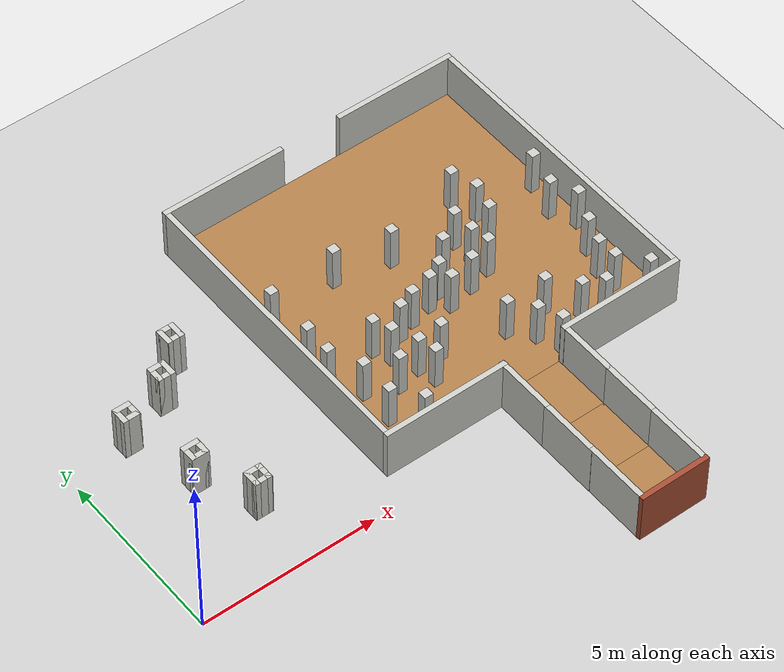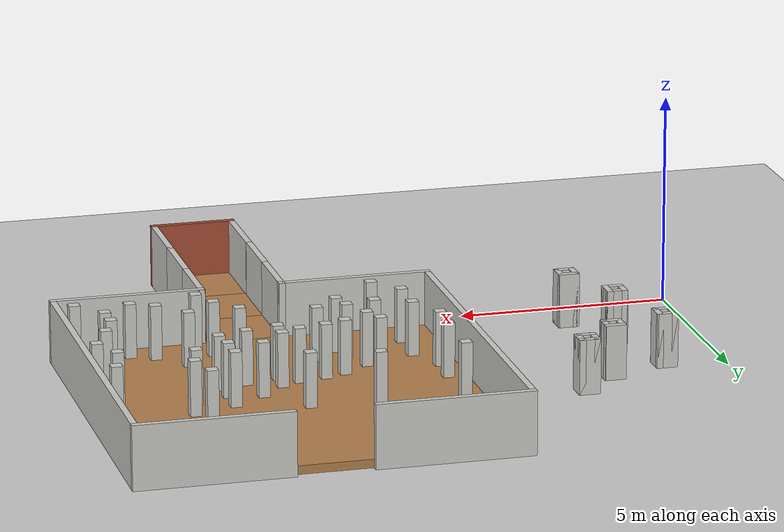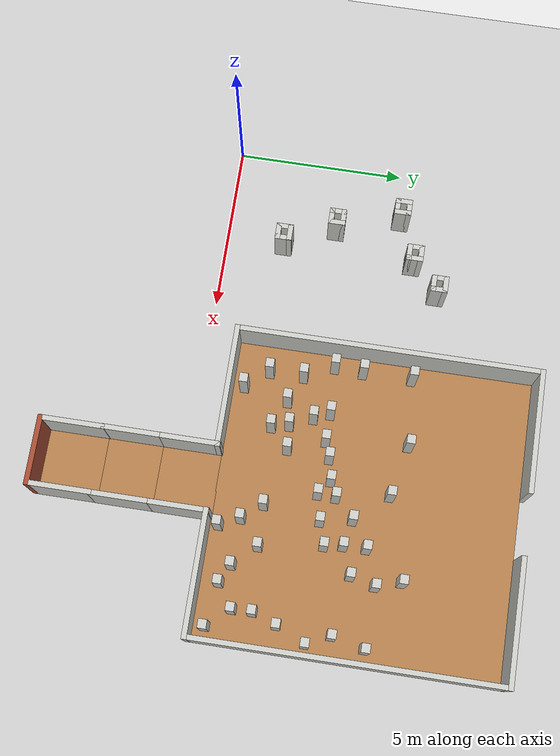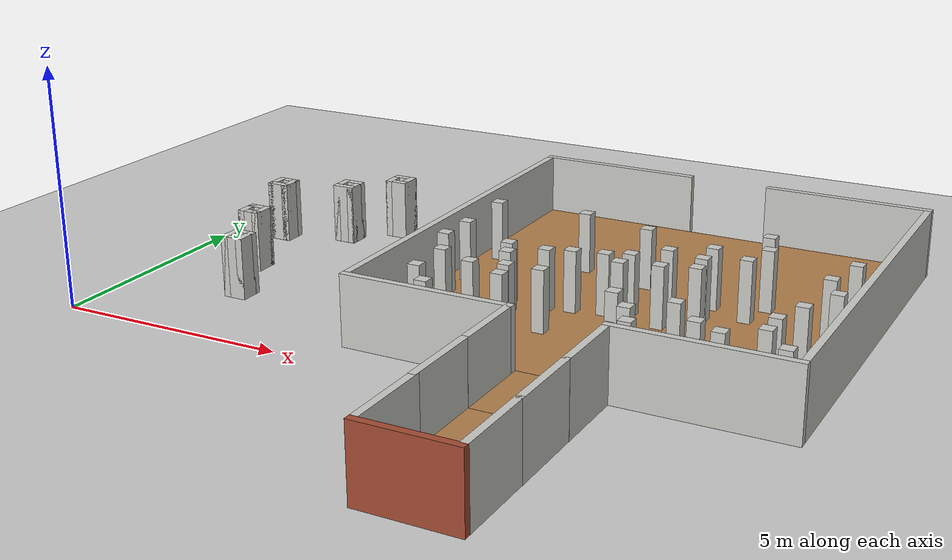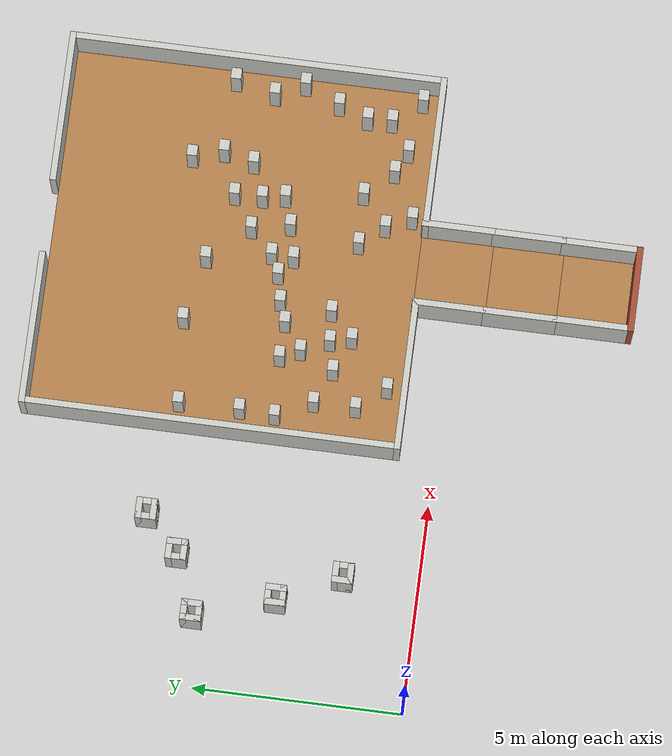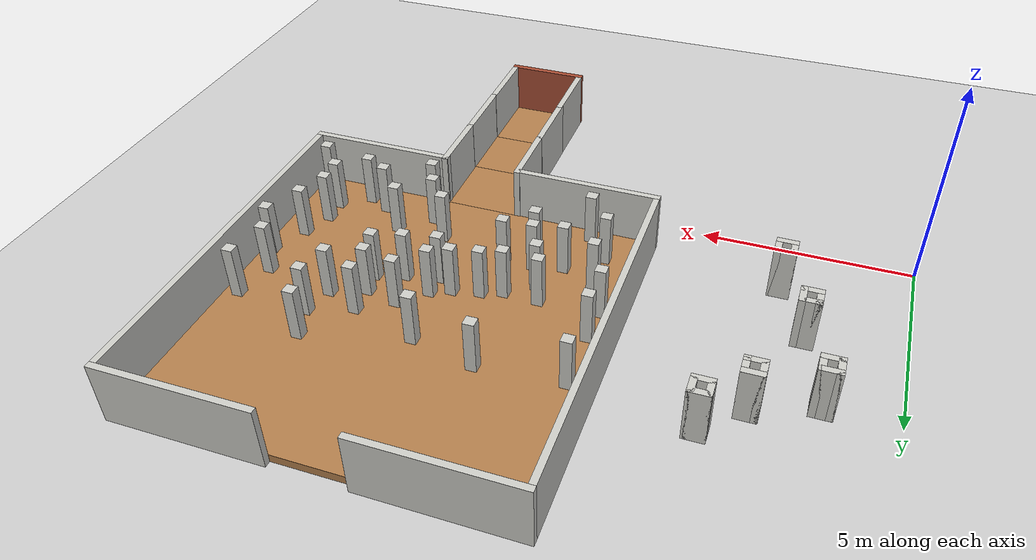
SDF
<sdf version="1.6">
 <world name="default">
  <model name="ground_plane">
   <static>1</static>
   <link name="link">
    <collision name="collision">
     <geometry><plane><normal>0 0 1</normal><size>100 100</size></plane></geometry>
     <surface><friction><ode><mu>100</mu><mu2>50</mu2></ode></friction></surface>
    </collision>
    <visual name="visual">
     <cast_shadows>0</cast_shadows>
     <geometry><plane><normal>0 0 1</normal><size>100 100</size></plane></geometry>
     <material>
      <script><uri>file://media/materials/scripts/gazebo.material</uri><name>Gazebo/Grey</name></script>
     </material>
    </visual>
   </link>
  </model>
  <model name="nerve_room_5x5ARENA_straight_clone">
   <pose>10.535 5.35033 0 0 -0 0</pose>
   <link name="Wall_11">
    <collision name="Wall_11_Collision">
     <geometry><box><size>8.75 0.15 1.5</size></box></geometry>
     <pose>0 0 0.75 0 -0 0</pose>
    </collision>
    <visual name="Wall_11_Visual">
     <pose>0 0 0.75 0 -0 0</pose>
     <geometry><box><size>8.75 0.15 1.5</size></box></geometry>
     <material>
      <script><uri>file://media/materials/scripts/gazebo.material</uri><name>Gazebo/CeilingTiled</name></script>
      <ambient>1 0.764706 0.305882 1</ambient>
     </material>
    </visual>
    <pose>4.4489 -0.000387 0 0 0 -1.5708</pose>
   </link>
   <link name="Wall_13">
    <collision name="Wall_13_Collision">
     <geometry><box><size>8.75 0.15 1.5</size></box></geometry>
     <pose>0 0 0.75 0 -0 0</pose>
    </collision>
    <visual name="Wall_13_Visual">
     <pose>0 0 0.75 0 -0 0</pose>
     <geometry><box><size>8.75 0.15 1.5</size></box></geometry>
     <material>
      <script><uri>file://media/materials/scripts/gazebo.material</uri><name>Gazebo/CeilingTiled</name></script>
      <ambient>1 0.764706 0.305882 1</ambient>
     </material>
    </visual>
    <pose>-4.44913 0.000846 0 0 0 -1.5708</pose>
   </link>
   <link name="Wall_15">
    <collision name="Wall_15_Collision">
     <geometry><box><size>3.65 0.15 1.5</size></box></geometry>
     <pose>0 0 0.75 0 -0 0</pose>
    </collision>
    <visual name="Wall_15_Visual">
     <pose>0 0 0.75 0 -0 0</pose>
     <geometry><box><size>3.65 0.15 1.5</size></box></geometry>
     <material>
      <script><uri>file://media/materials/scripts/gazebo.material</uri><name>Gazebo/CeilingTiled</name></script>
      <ambient>1 0.764706 0.305882 1</ambient>
     </material>
    </visual>
    <pose>2.69939 -4.45071 0 0 -0 0</pose>
   </link>
   <link name="Wall_17">
    <collision name="Wall_17_Collision">
     <geometry><box><size>3.65 0.15 1.5</size></box></geometry>
     <pose>0 0 0.75 0 -0 0</pose>
    </collision>
    <visual name="Wall_17_Visual">
     <pose>0 0 0.75 0 -0 0</pose>
     <geometry><box><size>3.65 0.15 1.5</size></box></geometry>
     <material>
      <script><uri>file://media/materials/scripts/gazebo.material</uri><name>Gazebo/CeilingTiled</name></script>
      <ambient>1 0.764706 0.305882 1</ambient>
     </material>
    </visual>
    <pose>-2.69939 4.45071 0 0 -0 0</pose>
   </link>
   <link name="Wall_19">
    <collision name="Wall_19_Collision">
     <geometry><box><size>3.65 0.15 1.5</size></box></geometry>
     <pose>0 0 0.75 0 -0 0</pose>
    </collision>
    <visual name="Wall_19_Visual">
     <pose>0 0 0.75 0 -0 0</pose>
     <geometry><box><size>3.65 0.15 1.5</size></box></geometry>
     <material>
      <script><uri>file://media/materials/scripts/gazebo.material</uri><name>Gazebo/CeilingTiled</name></script>
      <ambient>1 0.764706 0.305882 1</ambient>
     </material>
    </visual>
    <pose>2.69903 4.44972 0 0 -0 0</pose>
   </link>
   <link name="Wall_21">
    <collision name="Wall_21_Collision">
     <geometry><box><size>3.65 0.15 1.5</size></box></geometry>
     <pose>0 0 0.75 0 -0 0</pose>
    </collision>
    <visual name="Wall_21_Visual">
     <pose>0 0 0.75 0 -0 0</pose>
     <geometry><box><size>3.65 0.15 1.5</size></box></geometry>
     <material>
      <script><uri>file://media/materials/scripts/gazebo.material</uri><name>Gazebo/CeilingTiled</name></script>
      <ambient>1 0.764706 0.305882 1</ambient>
     </material>
    </visual>
    <pose>-2.69904 -4.44976 0 0 -0 0</pose>
   </link>
   <link name="Wall_6">
    <collision name="Wall_6_Collision">
     <geometry><box><size>8.76 8.75 0.2</size></box></geometry>
     <pose>0 0 0.1 0 -0 0</pose>
    </collision>
    <visual name="Wall_6_Visual">
     <pose>0 0 0.1 0 -0 0</pose>
     <geometry><box><size>8.76 8.75 0.2</size></box></geometry>
     <material>
      <script><uri>file://media/materials/scripts/gazebo.material</uri><name>Gazebo/Wood</name></script>
      <ambient>1 0.764706 0.305882 1</ambient>
     </material>
    </visual>
    <pose>0.000265 -0.004129 0 0 -0 1.5708</pose>
   </link>
   <static>1</static>
  </model>
  <model name="nerve_end_clone">
   <pose>10.5356 -3.31521 0 0 -0 3.14159</pose>
   <link name="Wall_0">
    <collision name="Wall_0_Collision">
     <geometry><box><size>1.76 1.75 0.2</size></box></geometry>
     <pose>0 0 0.1 0 -0 0</pose>
    </collision>
    <visual name="Wall_0_Visual">
     <pose>0 0 0.1 0 -0 0</pose>
     <geometry><box><size>1.76 1.75 0.2</size></box></geometry>
     <material>
      <script><uri>file://media/materials/scripts/gazebo.material</uri><name>Gazebo/Wood</name></script>
      <ambient>1 0.764706 0.305882 1</ambient>
     </material>
    </visual>
    <pose>-0.009 -0.064 0 0 -0 0</pose>
   </link>
   <link name="Wall_2">
    <collision name="Wall_2_Collision">
     <geometry><box><size>1.8 0.15 1.5</size></box></geometry>
     <pose>0 0 0.75 0 -0 0</pose>
    </collision>
    <visual name="Wall_2_Visual">
     <pose>0 0 0.75 0 -0 0</pose>
     <geometry><box><size>1.8 0.15 1.5</size></box></geometry>
     <material>
      <script><uri>file://media/materials/scripts/gazebo.material</uri><name>Gazebo/CeilingTiled</name></script>
      <ambient>1 0.764706 0.305882 1</ambient>
     </material>
    </visual>
    <pose>-0.95 -0.065 0 0 0 -1.5708</pose>
   </link>
   <link name="Wall_4">
    <collision name="Wall_4_Collision">
     <geometry><box><size>1.8 0.15 1.5</size></box></geometry>
     <pose>0 0 0.75 0 -0 0</pose>
    </collision>
    <visual name="Wall_4_Visual">
     <pose>0 0 0.75 0 -0 0</pose>
     <geometry><box><size>1.8 0.15 1.5</size></box></geometry>
     <material>
      <script><uri>file://media/materials/scripts/gazebo.material</uri><name>Gazebo/CeilingTiled</name></script>
      <ambient>1 0.764706 0.305882 1</ambient>
     </material>
    </visual>
    <pose>0.95 -0.065 0 0 0 -1.5708</pose>
   </link>
   <link name="Wall_6">
    <collision name="Wall_6_Collision">
     <geometry><box><size>2.05 0.15 1.5</size></box></geometry>
     <pose>0 0 0.75 0 -0 0</pose>
    </collision>
    <visual name="Wall_6_Visual">
     <pose>0 0 0.75 0 -0 0</pose>
     <geometry><box><size>2.05 0.15 1.5</size></box></geometry>
     <material>
      <script><uri>file://media/materials/scripts/gazebo.material</uri><name>Gazebo/Bricks</name></script>
      <ambient>0.996078 0.47451 0.0196078 1</ambient>
     </material>
    </visual>
    <pose>0 0.89 0 0 -0 0</pose>
   </link>
   <static>1</static>
  </model>
  <model name="nerve_obs_squarepillar_large_clone_2">
   <pose>3.01182 5.71985 0.2 0 -0 0</pose>
   <link name="Wall_31">
    <collision name="Wall_31_Collision">
     <geometry><box><size>0.5 0.15 1.3</size></box></geometry>
     <pose>0 0 0.65 0 -0 0</pose>
    </collision>
    <visual name="Wall_31_Visual">
     <pose>0 0 0.65 0 -0 0</pose>
     <geometry><box><size>0.5 0.15 1.3</size></box></geometry>
     <material>
      <script><uri>file://media/materials/scripts/gazebo.material</uri><name>Gazebo/CeilingTiled</name></script>
      <ambient>1 0.764706 0.305882 1</ambient>
     </material>
    </visual>
    <pose>-0.175 0 0 0 0 -1.5708</pose>
   </link>
   <link name="Wall_32">
    <collision name="Wall_32_Collision">
     <geometry><box><size>0.5 0.15 1.3</size></box></geometry>
     <pose>0 0 0.65 0 -0 0</pose>
    </collision>
    <visual name="Wall_32_Visual">
     <pose>0 0 0.65 0 -0 0</pose>
     <geometry><box><size>0.5 0.15 1.3</size></box></geometry>
     <material>
      <script><uri>file://media/materials/scripts/gazebo.material</uri><name>Gazebo/CeilingTiled</name></script>
      <ambient>1 0.764706 0.305882 1</ambient>
     </material>
    </visual>
    <pose>0 -0.175 0 0 -0 0</pose>
   </link>
   <link name="Wall_33">
    <collision name="Wall_33_Collision">
     <geometry><box><size>0.5 0.15 1.3</size></box></geometry>
     <pose>0 0 0.65 0 -0 0</pose>
    </collision>
    <visual name="Wall_33_Visual">
     <pose>0 0 0.65 0 -0 0</pose>
     <geometry><box><size>0.5 0.15 1.3</size></box></geometry>
     <material>
      <script><uri>file://media/materials/scripts/gazebo.material</uri><name>Gazebo/CeilingTiled</name></script>
      <ambient>1 0.764706 0.305882 1</ambient>
     </material>
    </visual>
    <pose>0.175 0 0 0 -0 1.5708</pose>
   </link>
   <link name="Wall_34">
    <collision name="Wall_34_Collision">
     <geometry><box><size>0.5 0.15 1.3</size></box></geometry>
     <pose>0 0 0.65 0 -0 0</pose>
    </collision>
    <visual name="Wall_34_Visual">
     <pose>0 0 0.65 0 -0 0</pose>
     <geometry><box><size>0.5 0.15 1.3</size></box></geometry>
     <material>
      <script><uri>file://media/materials/scripts/gazebo.material</uri><name>Gazebo/CeilingTiled</name></script>
      <ambient>1 0.764706 0.305882 1</ambient>
     </material>
    </visual>
    <pose>0 0.175 0 0 -0 3.14159</pose>
   </link>
   <static>1</static>
  </model>
  <model name="nerve_obs_squarepillar_large_clone_4">
   <pose>2.22626 3.28532 0.2 0 -0 0</pose>
   <link name="Wall_31">
    <collision name="Wall_31_Collision">
     <geometry><box><size>0.5 0.15 1.3</size></box></geometry>
     <pose>0 0 0.65 0 -0 0</pose>
    </collision>
    <visual name="Wall_31_Visual">
     <pose>0 0 0.65 0 -0 0</pose>
     <geometry><box><size>0.5 0.15 1.3</size></box></geometry>
     <material>
      <script><uri>file://media/materials/scripts/gazebo.material</uri><name>Gazebo/CeilingTiled</name></script>
      <ambient>1 0.764706 0.305882 1</ambient>
     </material>
    </visual>
    <pose>-0.175 0 0 0 0 -1.5708</pose>
   </link>
   <link name="Wall_32">
    <collision name="Wall_32_Collision">
     <geometry><box><size>0.5 0.15 1.3</size></box></geometry>
     <pose>0 0 0.65 0 -0 0</pose>
    </collision>
    <visual name="Wall_32_Visual">
     <pose>0 0 0.65 0 -0 0</pose>
     <geometry><box><size>0.5 0.15 1.3</size></box></geometry>
     <material>
      <script><uri>file://media/materials/scripts/gazebo.material</uri><name>Gazebo/CeilingTiled</name></script>
      <ambient>1 0.764706 0.305882 1</ambient>
     </material>
    </visual>
    <pose>0 -0.175 0 0 -0 0</pose>
   </link>
   <link name="Wall_33">
    <collision name="Wall_33_Collision">
     <geometry><box><size>0.5 0.15 1.3</size></box></geometry>
     <pose>0 0 0.65 0 -0 0</pose>
    </collision>
    <visual name="Wall_33_Visual">
     <pose>0 0 0.65 0 -0 0</pose>
     <geometry><box><size>0.5 0.15 1.3</size></box></geometry>
     <material>
      <script><uri>file://media/materials/scripts/gazebo.material</uri><name>Gazebo/CeilingTiled</name></script>
      <ambient>1 0.764706 0.305882 1</ambient>
     </material>
    </visual>
    <pose>0.175 0 0 0 -0 1.5708</pose>
   </link>
   <link name="Wall_34">
    <collision name="Wall_34_Collision">
     <geometry><box><size>0.5 0.15 1.3</size></box></geometry>
     <pose>0 0 0.65 0 -0 0</pose>
    </collision>
    <visual name="Wall_34_Visual">
     <pose>0 0 0.65 0 -0 0</pose>
     <geometry><box><size>0.5 0.15 1.3</size></box></geometry>
     <material>
      <script><uri>file://media/materials/scripts/gazebo.material</uri><name>Gazebo/CeilingTiled</name></script>
      <ambient>1 0.764706 0.305882 1</ambient>
     </material>
    </visual>
    <pose>0 0.175 0 0 -0 3.14159</pose>
   </link>
   <static>1</static>
  </model>
  <model name="nerve_obs_squarepillar_large_clone_6">
   <pose>2.94415 1.78308 0.2 0 -0 0</pose>
   <link name="Wall_31">
    <collision name="Wall_31_Collision">
     <geometry><box><size>0.5 0.15 1.3</size></box></geometry>
     <pose>0 0 0.65 0 -0 0</pose>
    </collision>
    <visual name="Wall_31_Visual">
     <pose>0 0 0.65 0 -0 0</pose>
     <geometry><box><size>0.5 0.15 1.3</size></box></geometry>
     <material>
      <script><uri>file://media/materials/scripts/gazebo.material</uri><name>Gazebo/CeilingTiled</name></script>
      <ambient>1 0.764706 0.305882 1</ambient>
     </material>
    </visual>
    <pose>-0.175 0 0 0 0 -1.5708</pose>
   </link>
   <link name="Wall_32">
    <collision name="Wall_32_Collision">
     <geometry><box><size>0.5 0.15 1.3</size></box></geometry>
     <pose>0 0 0.65 0 -0 0</pose>
    </collision>
    <visual name="Wall_32_Visual">
     <pose>0 0 0.65 0 -0 0</pose>
     <geometry><box><size>0.5 0.15 1.3</size></box></geometry>
     <material>
      <script><uri>file://media/materials/scripts/gazebo.material</uri><name>Gazebo/CeilingTiled</name></script>
      <ambient>1 0.764706 0.305882 1</ambient>
     </material>
    </visual>
    <pose>0 -0.175 0 0 -0 0</pose>
   </link>
   <link name="Wall_33">
    <collision name="Wall_33_Collision">
     <geometry><box><size>0.5 0.15 1.3</size></box></geometry>
     <pose>0 0 0.65 0 -0 0</pose>
    </collision>
    <visual name="Wall_33_Visual">
     <pose>0 0 0.65 0 -0 0</pose>
     <geometry><box><size>0.5 0.15 1.3</size></box></geometry>
     <material>
      <script><uri>file://media/materials/scripts/gazebo.material</uri><name>Gazebo/CeilingTiled</name></script>
      <ambient>1 0.764706 0.305882 1</ambient>
     </material>
    </visual>
    <pose>0.175 0 0 0 -0 1.5708</pose>
   </link>
   <link name="Wall_34">
    <collision name="Wall_34_Collision">
     <geometry><box><size>0.5 0.15 1.3</size></box></geometry>
     <pose>0 0 0.65 0 -0 0</pose>
    </collision>
    <visual name="Wall_34_Visual">
     <pose>0 0 0.65 0 -0 0</pose>
     <geometry><box><size>0.5 0.15 1.3</size></box></geometry>
     <material>
      <script><uri>file://media/materials/scripts/gazebo.material</uri><name>Gazebo/CeilingTiled</name></script>
      <ambient>1 0.764706 0.305882 1</ambient>
     </material>
    </visual>
    <pose>0 0.175 0 0 -0 3.14159</pose>
   </link>
   <static>1</static>
  </model>
  <model name="nerve_obs_squarepillar_large_clone_7">
   <pose>1.61679 5.18935 0.2 0 -0 0</pose>
   <link name="Wall_31">
    <collision name="Wall_31_Collision">
     <geometry><box><size>0.5 0.15 1.3</size></box></geometry>
     <pose>0 0 0.65 0 -0 0</pose>
    </collision>
    <visual name="Wall_31_Visual">
     <pose>0 0 0.65 0 -0 0</pose>
     <geometry><box><size>0.5 0.15 1.3</size></box></geometry>
     <material>
      <script><uri>file://media/materials/scripts/gazebo.material</uri><name>Gazebo/CeilingTiled</name></script>
      <ambient>1 0.764706 0.305882 1</ambient>
     </material>
    </visual>
    <pose>-0.175 0 0 0 0 -1.5708</pose>
   </link>
   <link name="Wall_32">
    <collision name="Wall_32_Collision">
     <geometry><box><size>0.5 0.15 1.3</size></box></geometry>
     <pose>0 0 0.65 0 -0 0</pose>
    </collision>
    <visual name="Wall_32_Visual">
     <pose>0 0 0.65 0 -0 0</pose>
     <geometry><box><size>0.5 0.15 1.3</size></box></geometry>
     <material>
      <script><uri>file://media/materials/scripts/gazebo.material</uri><name>Gazebo/CeilingTiled</name></script>
      <ambient>1 0.764706 0.305882 1</ambient>
     </material>
    </visual>
    <pose>0 -0.175 0 0 -0 0</pose>
   </link>
   <link name="Wall_33">
    <collision name="Wall_33_Collision">
     <geometry><box><size>0.5 0.15 1.3</size></box></geometry>
     <pose>0 0 0.65 0 -0 0</pose>
    </collision>
    <visual name="Wall_33_Visual">
     <pose>0 0 0.65 0 -0 0</pose>
     <geometry><box><size>0.5 0.15 1.3</size></box></geometry>
     <material>
      <script><uri>file://media/materials/scripts/gazebo.material</uri><name>Gazebo/CeilingTiled</name></script>
      <ambient>1 0.764706 0.305882 1</ambient>
     </material>
    </visual>
    <pose>0.175 0 0 0 -0 1.5708</pose>
   </link>
   <link name="Wall_34">
    <collision name="Wall_34_Collision">
     <geometry><box><size>0.5 0.15 1.3</size></box></geometry>
     <pose>0 0 0.65 0 -0 0</pose>
    </collision>
    <visual name="Wall_34_Visual">
     <pose>0 0 0.65 0 -0 0</pose>
     <geometry><box><size>0.5 0.15 1.3</size></box></geometry>
     <material>
      <script><uri>file://media/materials/scripts/gazebo.material</uri><name>Gazebo/CeilingTiled</name></script>
      <ambient>1 0.764706 0.305882 1</ambient>
     </material>
    </visual>
    <pose>0 0.175 0 0 -0 3.14159</pose>
   </link>
   <static>1</static>
  </model>
  <model name="nerve_obs_squarepillar_large_clone_10">
   <pose>3.87219 6.54737 0.2 0 -0 0</pose>
   <link name="Wall_31">
    <collision name="Wall_31_Collision">
     <geometry><box><size>0.5 0.15 1.3</size></box></geometry>
     <pose>0 0 0.65 0 -0 0</pose>
    </collision>
    <visual name="Wall_31_Visual">
     <pose>0 0 0.65 0 -0 0</pose>
     <geometry><box><size>0.5 0.15 1.3</size></box></geometry>
     <material>
      <script><uri>file://media/materials/scripts/gazebo.material</uri><name>Gazebo/CeilingTiled</name></script>
      <ambient>1 0.764706 0.305882 1</ambient>
     </material>
    </visual>
    <pose>-0.175 0 0 0 0 -1.5708</pose>
   </link>
   <link name="Wall_32">
    <collision name="Wall_32_Collision">
     <geometry><box><size>0.5 0.15 1.3</size></box></geometry>
     <pose>0 0 0.65 0 -0 0</pose>
    </collision>
    <visual name="Wall_32_Visual">
     <pose>0 0 0.65 0 -0 0</pose>
     <geometry><box><size>0.5 0.15 1.3</size></box></geometry>
     <material>
      <script><uri>file://media/materials/scripts/gazebo.material</uri><name>Gazebo/CeilingTiled</name></script>
      <ambient>1 0.764706 0.305882 1</ambient>
     </material>
    </visual>
    <pose>0 -0.175 0 0 -0 0</pose>
   </link>
   <link name="Wall_33">
    <collision name="Wall_33_Collision">
     <geometry><box><size>0.5 0.15 1.3</size></box></geometry>
     <pose>0 0 0.65 0 -0 0</pose>
    </collision>
    <visual name="Wall_33_Visual">
     <pose>0 0 0.65 0 -0 0</pose>
     <geometry><box><size>0.5 0.15 1.3</size></box></geometry>
     <material>
      <script><uri>file://media/materials/scripts/gazebo.material</uri><name>Gazebo/CeilingTiled</name></script>
      <ambient>1 0.764706 0.305882 1</ambient>
     </material>
    </visual>
    <pose>0.175 0 0 0 -0 1.5708</pose>
   </link>
   <link name="Wall_34">
    <collision name="Wall_34_Collision">
     <geometry><box><size>0.5 0.15 1.3</size></box></geometry>
     <pose>0 0 0.65 0 -0 0</pose>
    </collision>
    <visual name="Wall_34_Visual">
     <pose>0 0 0.65 0 -0 0</pose>
     <geometry><box><size>0.5 0.15 1.3</size></box></geometry>
     <material>
      <script><uri>file://media/materials/scripts/gazebo.material</uri><name>Gazebo/CeilingTiled</name></script>
      <ambient>1 0.764706 0.305882 1</ambient>
     </material>
    </visual>
    <pose>0 0.175 0 0 -0 3.14159</pose>
   </link>
   <static>1</static>
  </model>
  <model name="nerve_straight_clone_clone_1_clone">
   <pose>10.5362 0.116636 0 0 -0 0</pose>
   <link name="Wall_0">
    <collision name="Wall_0_Collision">
     <geometry><box><size>1.76 1.75 0.2</size></box></geometry>
     <pose>0 0 0.1 0 -0 0</pose>
    </collision>
    <visual name="Wall_0_Visual">
     <pose>0 0 0.1 0 -0 0</pose>
     <geometry><box><size>1.76 1.75 0.2</size></box></geometry>
     <material>
      <script><uri>file://media/materials/scripts/gazebo.material</uri><name>Gazebo/Wood</name></script>
      <ambient>1 0.764706 0.305882 1</ambient>
     </material>
    </visual>
    <pose>0.005 -0.002 0 0 -0 3.14159</pose>
   </link>
   <link name="Wall_2">
    <collision name="Wall_2_Collision">
     <geometry><box><size>1.75 0.15 1.5</size></box></geometry>
     <pose>0 0 0.75 0 -0 0</pose>
    </collision>
    <visual name="Wall_2_Visual">
     <pose>0 0 0.75 0 -0 0</pose>
     <geometry><box><size>1.75 0.15 1.5</size></box></geometry>
     <material>
      <script><uri>file://media/materials/scripts/gazebo.material</uri><name>Gazebo/CeilingTiled</name></script>
      <ambient>1 0.764706 0.305882 1</ambient>
     </material>
    </visual>
    <pose>-0.955 0.002 0 0 0 -1.5708</pose>
   </link>
   <link name="Wall_4">
    <collision name="Wall_4_Collision">
     <geometry><box><size>1.75 0.15 1.5</size></box></geometry>
     <pose>0 0 0.75 0 -0 0</pose>
    </collision>
    <visual name="Wall_4_Visual">
     <pose>0 0 0.75 0 -0 0</pose>
     <geometry><box><size>1.75 0.15 1.5</size></box></geometry>
     <material>
      <script><uri>file://media/materials/scripts/gazebo.material</uri><name>Gazebo/CeilingTiled</name></script>
      <ambient>1 0.764706 0.305882 1</ambient>
     </material>
    </visual>
    <pose>0.955 0.002 0 0 0 -1.5708</pose>
   </link>
   <static>1</static>
  </model>
  <model name="nerve_straight_clone_clone_1_clone_0">
   <pose>10.5344 -1.57658 0 0 -0 0</pose>
   <link name="Wall_0">
    <collision name="Wall_0_Collision">
     <geometry><box><size>1.76 1.75 0.2</size></box></geometry>
     <pose>0 0 0.1 0 -0 0</pose>
    </collision>
    <visual name="Wall_0_Visual">
     <pose>0 0 0.1 0 -0 0</pose>
     <geometry><box><size>1.76 1.75 0.2</size></box></geometry>
     <material>
      <script><uri>file://media/materials/scripts/gazebo.material</uri><name>Gazebo/Wood</name></script>
      <ambient>1 0.764706 0.305882 1</ambient>
     </material>
    </visual>
    <pose>0.005 -0.002 0 0 -0 3.14159</pose>
   </link>
   <link name="Wall_2">
    <collision name="Wall_2_Collision">
     <geometry><box><size>1.75 0.15 1.5</size></box></geometry>
     <pose>0 0 0.75 0 -0 0</pose>
    </collision>
    <visual name="Wall_2_Visual">
     <pose>0 0 0.75 0 -0 0</pose>
     <geometry><box><size>1.75 0.15 1.5</size></box></geometry>
     <material>
      <script><uri>file://media/materials/scripts/gazebo.material</uri><name>Gazebo/CeilingTiled</name></script>
      <ambient>1 0.764706 0.305882 1</ambient>
     </material>
    </visual>
    <pose>-0.955 0.002 0 0 0 -1.5708</pose>
   </link>
   <link name="Wall_4">
    <collision name="Wall_4_Collision">
     <geometry><box><size>1.75 0.15 1.5</size></box></geometry>
     <pose>0 0 0.75 0 -0 0</pose>
    </collision>
    <visual name="Wall_4_Visual">
     <pose>0 0 0.75 0 -0 0</pose>
     <geometry><box><size>1.75 0.15 1.5</size></box></geometry>
     <material>
      <script><uri>file://media/materials/scripts/gazebo.material</uri><name>Gazebo/CeilingTiled</name></script>
      <ambient>1 0.764706 0.305882 1</ambient>
     </material>
    </visual>
    <pose>0.955 0.002 0 0 0 -1.5708</pose>
   </link>
   <static>1</static>
  </model>
  <model name="nerve_obs_squarepillar_small_clone_2">
   <pose>8.61579 6.31183 0.2 0 -0 0</pose>
   <link name="Wall_40">
    <collision name="Wall_40_Collision">
     <geometry><box><size>0.26 0.25 1.3</size></box></geometry>
     <pose>0 0 0.65 0 -0 0</pose>
    </collision>
    <visual name="Wall_40_Visual">
     <pose>0 0 0.65 0 -0 0</pose>
     <geometry><box><size>0.26 0.25 1.3</size></box></geometry>
     <material>
      <script><uri>file://media/materials/scripts/gazebo.material</uri><name>Gazebo/CeilingTiled</name></script>
      <ambient>1 0.764706 0.305882 1</ambient>
     </material>
    </visual>
   </link>
   <static>1</static>
  </model>
  <model name="nerve_obs_squarepillar_small_clone_3">
   <pose>6.61775 4.71012 0.2 0 -0 0</pose>
   <link name="Wall_40">
    <collision name="Wall_40_Collision">
     <geometry><box><size>0.26 0.25 1.3</size></box></geometry>
     <pose>0 0 0.65 0 -0 0</pose>
    </collision>
    <visual name="Wall_40_Visual">
     <pose>0 0 0.65 0 -0 0</pose>
     <geometry><box><size>0.26 0.25 1.3</size></box></geometry>
     <material>
      <script><uri>file://media/materials/scripts/gazebo.material</uri><name>Gazebo/CeilingTiled</name></script>
      <ambient>1 0.764706 0.305882 1</ambient>
     </material>
    </visual>
   </link>
   <static>1</static>
  </model>
  <model name="nerve_obs_squarepillar_small_clone_4">
   <pose>8.83425 3.91648 0.2 0 -0 0</pose>
   <link name="Wall_40">
    <collision name="Wall_40_Collision">
     <geometry><box><size>0.26 0.25 1.3</size></box></geometry>
     <pose>0 0 0.65 0 -0 0</pose>
    </collision>
    <visual name="Wall_40_Visual">
     <pose>0 0 0.65 0 -0 0</pose>
     <geometry><box><size>0.26 0.25 1.3</size></box></geometry>
     <material>
      <script><uri>file://media/materials/scripts/gazebo.material</uri><name>Gazebo/CeilingTiled</name></script>
      <ambient>1 0.764706 0.305882 1</ambient>
     </material>
    </visual>
   </link>
   <static>1</static>
  </model>
  <model name="nerve_obs_squarepillar_small_clone_5">
   <pose>10.4266 4.43517 0.2 0 -0 0</pose>
   <link name="Wall_40">
    <collision name="Wall_40_Collision">
     <geometry><box><size>0.26 0.25 1.3</size></box></geometry>
     <pose>0 0 0.65 0 -0 0</pose>
    </collision>
    <visual name="Wall_40_Visual">
     <pose>0 0 0.65 0 -0 0</pose>
     <geometry><box><size>0.26 0.25 1.3</size></box></geometry>
     <material>
      <script><uri>file://media/materials/scripts/gazebo.material</uri><name>Gazebo/CeilingTiled</name></script>
      <ambient>1 0.764706 0.305882 1</ambient>
     </material>
    </visual>
   </link>
   <static>1</static>
  </model>
  <model name="nerve_obs_squarepillar_small_clone_6">
   <pose>11.758 5.49637 0.2 0 -0 0</pose>
   <link name="Wall_40">
    <collision name="Wall_40_Collision">
     <geometry><box><size>0.26 0.25 1.3</size></box></geometry>
     <pose>0 0 0.65 0 -0 0</pose>
    </collision>
    <visual name="Wall_40_Visual">
     <pose>0 0 0.65 0 -0 0</pose>
     <geometry><box><size>0.26 0.25 1.3</size></box></geometry>
     <material>
      <script><uri>file://media/materials/scripts/gazebo.material</uri><name>Gazebo/CeilingTiled</name></script>
      <ambient>1 0.764706 0.305882 1</ambient>
     </material>
    </visual>
   </link>
   <static>1</static>
  </model>
  <model name="nerve_obs_squarepillar_small_clone_7">
   <pose>12.5481 6.61207 0.2 0 -0 0</pose>
   <link name="Wall_40">
    <collision name="Wall_40_Collision">
     <geometry><box><size>0.26 0.25 1.3</size></box></geometry>
     <pose>0 0 0.65 0 -0 0</pose>
    </collision>
    <visual name="Wall_40_Visual">
     <pose>0 0 0.65 0 -0 0</pose>
     <geometry><box><size>0.26 0.25 1.3</size></box></geometry>
     <material>
      <script><uri>file://media/materials/scripts/gazebo.material</uri><name>Gazebo/CeilingTiled</name></script>
      <ambient>1 0.764706 0.305882 1</ambient>
     </material>
    </visual>
   </link>
   <static>1</static>
  </model>
  <model name="nerve_obs_squarepillar_small_clone_9">
   <pose>11.8585 4.29046 0.2 0 -0 0</pose>
   <link name="Wall_40">
    <collision name="Wall_40_Collision">
     <geometry><box><size>0.26 0.25 1.3</size></box></geometry>
     <pose>0 0 0.65 0 -0 0</pose>
    </collision>
    <visual name="Wall_40_Visual">
     <pose>0 0 0.65 0 -0 0</pose>
     <geometry><box><size>0.26 0.25 1.3</size></box></geometry>
     <material>
      <script><uri>file://media/materials/scripts/gazebo.material</uri><name>Gazebo/CeilingTiled</name></script>
      <ambient>1 0.764706 0.305882 1</ambient>
     </material>
    </visual>
   </link>
   <static>1</static>
  </model>
  <model name="nerve_obs_squarepillar_small_clone_10">
   <pose>12.578 5.14411 0.2 0 -0 0</pose>
   <link name="Wall_40">
    <collision name="Wall_40_Collision">
     <geometry><box><size>0.26 0.25 1.3</size></box></geometry>
     <pose>0 0 0.65 0 -0 0</pose>
    </collision>
    <visual name="Wall_40_Visual">
     <pose>0 0 0.65 0 -0 0</pose>
     <geometry><box><size>0.26 0.25 1.3</size></box></geometry>
     <material>
      <script><uri>file://media/materials/scripts/gazebo.material</uri><name>Gazebo/CeilingTiled</name></script>
      <ambient>1 0.764706 0.305882 1</ambient>
     </material>
    </visual>
   </link>
   <static>1</static>
  </model>
  <model name="nerve_obs_squarepillar_small_clone_11">
   <pose>14.6362 4.15857 0.2 0 -0 0</pose>
   <link name="Wall_40">
    <collision name="Wall_40_Collision">
     <geometry><box><size>0.26 0.25 1.3</size></box></geometry>
     <pose>0 0 0.65 0 -0 0</pose>
    </collision>
    <visual name="Wall_40_Visual">
     <pose>0 0 0.65 0 -0 0</pose>
     <geometry><box><size>0.26 0.25 1.3</size></box></geometry>
     <material>
      <script><uri>file://media/materials/scripts/gazebo.material</uri><name>Gazebo/CeilingTiled</name></script>
      <ambient>1 0.764706 0.305882 1</ambient>
     </material>
    </visual>
   </link>
   <static>1</static>
  </model>
  <model name="nerve_obs_squarepillar_small_clone_12">
   <pose>13.9841 2.58865 0.2 0 -0 0</pose>
   <link name="Wall_40">
    <collision name="Wall_40_Collision">
     <geometry><box><size>0.26 0.25 1.3</size></box></geometry>
     <pose>0 0 0.65 0 -0 0</pose>
    </collision>
    <visual name="Wall_40_Visual">
     <pose>0 0 0.65 0 -0 0</pose>
     <geometry><box><size>0.26 0.25 1.3</size></box></geometry>
     <material>
      <script><uri>file://media/materials/scripts/gazebo.material</uri><name>Gazebo/CeilingTiled</name></script>
      <ambient>1 0.764706 0.305882 1</ambient>
     </material>
    </visual>
   </link>
   <static>1</static>
  </model>
  <model name="nerve_obs_squarepillar_small_clone_13">
   <pose>10.9434 2.42436 0.2 0 -0 0</pose>
   <link name="Wall_40">
    <collision name="Wall_40_Collision">
     <geometry><box><size>0.26 0.25 1.3</size></box></geometry>
     <pose>0 0 0.65 0 -0 0</pose>
    </collision>
    <visual name="Wall_40_Visual">
     <pose>0 0 0.65 0 -0 0</pose>
     <geometry><box><size>0.26 0.25 1.3</size></box></geometry>
     <material>
      <script><uri>file://media/materials/scripts/gazebo.material</uri><name>Gazebo/CeilingTiled</name></script>
      <ambient>1 0.764706 0.305882 1</ambient>
     </material>
    </visual>
   </link>
   <static>1</static>
  </model>
  <model name="nerve_obs_squarepillar_small_clone_14">
   <pose>11.4306 1.84627 0.2 0 -0 0</pose>
   <link name="Wall_40">
    <collision name="Wall_40_Collision">
     <geometry><box><size>0.26 0.25 1.3</size></box></geometry>
     <pose>0 0 0.65 0 -0 0</pose>
    </collision>
    <visual name="Wall_40_Visual">
     <pose>0 0 0.65 0 -0 0</pose>
     <geometry><box><size>0.26 0.25 1.3</size></box></geometry>
     <material>
      <script><uri>file://media/materials/scripts/gazebo.material</uri><name>Gazebo/CeilingTiled</name></script>
      <ambient>1 0.764706 0.305882 1</ambient>
     </material>
    </visual>
   </link>
   <static>1</static>
  </model>
  <model name="nerve_obs_squarepillar_small_clone_15">
   <pose>11.708 1.23397 0.2 0 -0 0</pose>
   <link name="Wall_40">
    <collision name="Wall_40_Collision">
     <geometry><box><size>0.26 0.25 1.3</size></box></geometry>
     <pose>0 0 0.65 0 -0 0</pose>
    </collision>
    <visual name="Wall_40_Visual">
     <pose>0 0 0.65 0 -0 0</pose>
     <geometry><box><size>0.26 0.25 1.3</size></box></geometry>
     <material>
      <script><uri>file://media/materials/scripts/gazebo.material</uri><name>Gazebo/CeilingTiled</name></script>
      <ambient>1 0.764706 0.305882 1</ambient>
     </material>
    </visual>
   </link>
   <static>1</static>
  </model>
  <model name="nerve_obs_squarepillar_small_clone_16">
   <pose>8.20416 3.46445 0.2 0 -0 0</pose>
   <link name="Wall_40">
    <collision name="Wall_40_Collision">
     <geometry><box><size>0.26 0.25 1.3</size></box></geometry>
     <pose>0 0 0.65 0 -0 0</pose>
    </collision>
    <visual name="Wall_40_Visual">
     <pose>0 0 0.65 0 -0 0</pose>
     <geometry><box><size>0.26 0.25 1.3</size></box></geometry>
     <material>
      <script><uri>file://media/materials/scripts/gazebo.material</uri><name>Gazebo/CeilingTiled</name></script>
      <ambient>1 0.764706 0.305882 1</ambient>
     </material>
    </visual>
   </link>
   <static>1</static>
  </model>
  <model name="nerve_obs_squarepillar_small_clone_17">
   <pose>8.6369 2.29155 0.2 0 -0 0</pose>
   <link name="Wall_40">
    <collision name="Wall_40_Collision">
     <geometry><box><size>0.26 0.25 1.3</size></box></geometry>
     <pose>0 0 0.65 0 -0 0</pose>
    </collision>
    <visual name="Wall_40_Visual">
     <pose>0 0 0.65 0 -0 0</pose>
     <geometry><box><size>0.26 0.25 1.3</size></box></geometry>
     <material>
      <script><uri>file://media/materials/scripts/gazebo.material</uri><name>Gazebo/CeilingTiled</name></script>
      <ambient>1 0.764706 0.305882 1</ambient>
     </material>
    </visual>
   </link>
   <static>1</static>
  </model>
  <model name="nerve_obs_squarepillar_small_clone_18">
   <pose>7 2 0.2 0 -0 0</pose>
   <link name="Wall_40">
    <collision name="Wall_40_Collision">
     <geometry><box><size>0.26 0.25 1.3</size></box></geometry>
     <pose>0 0 0.65 0 -0 0</pose>
    </collision>
    <visual name="Wall_40_Visual">
     <pose>0 0 0.65 0 -0 0</pose>
     <geometry><box><size>0.26 0.25 1.3</size></box></geometry>
     <material>
      <script><uri>file://media/materials/scripts/gazebo.material</uri><name>Gazebo/CeilingTiled</name></script>
      <ambient>1 0.764706 0.305882 1</ambient>
     </material>
    </visual>
   </link>
   <static>1</static>
  </model>
  <model name="nerve_obs_squarepillar_small_clone_19">
   <pose>12.1487 2.45431 0.2 0 -0 0</pose>
   <link name="Wall_40">
    <collision name="Wall_40_Collision">
     <geometry><box><size>0.26 0.25 1.3</size></box></geometry>
     <pose>0 0 0.65 0 -0 0</pose>
    </collision>
    <visual name="Wall_40_Visual">
     <pose>0 0 0.65 0 -0 0</pose>
     <geometry><box><size>0.26 0.25 1.3</size></box></geometry>
     <material>
      <script><uri>file://media/materials/scripts/gazebo.material</uri><name>Gazebo/CeilingTiled</name></script>
      <ambient>1 0.764706 0.305882 1</ambient>
     </material>
    </visual>
   </link>
   <static>1</static>
  </model>
  <model name="nerve_obs_squarepillar_small_clone_20">
   <pose>13.3159 1.52467 0.2 0 -0 0</pose>
   <link name="Wall_40">
    <collision name="Wall_40_Collision">
     <geometry><box><size>0.26 0.25 1.3</size></box></geometry>
     <pose>0 0 0.65 0 -0 0</pose>
    </collision>
    <visual name="Wall_40_Visual">
     <pose>0 0 0.65 0 -0 0</pose>
     <geometry><box><size>0.26 0.25 1.3</size></box></geometry>
     <material>
      <script><uri>file://media/materials/scripts/gazebo.material</uri><name>Gazebo/CeilingTiled</name></script>
      <ambient>1 0.764706 0.305882 1</ambient>
     </material>
    </visual>
   </link>
   <static>1</static>
  </model>
  <model name="nerve_obs_squarepillar_small_clone_21">
   <pose>14 2 0.2 0 -0 0</pose>
   <link name="Wall_40">
    <collision name="Wall_40_Collision">
     <geometry><box><size>0.26 0.25 1.3</size></box></geometry>
     <pose>0 0 0.65 0 -0 0</pose>
    </collision>
    <visual name="Wall_40_Visual">
     <pose>0 0 0.65 0 -0 0</pose>
     <geometry><box><size>0.26 0.25 1.3</size></box></geometry>
     <material>
      <script><uri>file://media/materials/scripts/gazebo.material</uri><name>Gazebo/CeilingTiled</name></script>
      <ambient>1 0.764706 0.305882 1</ambient>
     </material>
    </visual>
   </link>
   <static>1</static>
  </model>
  <model name="nerve_obs_squarepillar_small_clone_28">
   <pose>14.5733 1.32817 0.2 0 -0 0</pose>
   <link name="Wall_40">
    <collision name="Wall_40_Collision">
     <geometry><box><size>0.26 0.25 1.3</size></box></geometry>
     <pose>0 0 0.65 0 -0 0</pose>
    </collision>
    <visual name="Wall_40_Visual">
     <pose>0 0 0.65 0 -0 0</pose>
     <geometry><box><size>0.26 0.25 1.3</size></box></geometry>
     <material>
      <script><uri>file://media/materials/scripts/gazebo.material</uri><name>Gazebo/CeilingTiled</name></script>
      <ambient>1 0.764706 0.305882 1</ambient>
     </material>
    </visual>
   </link>
   <static>1</static>
  </model>
  <model name="nerve_obs_squarepillar_small_clone_31">
   <pose>6.60534 6.15979 0.2 0 -0 0</pose>
   <link name="Wall_40">
    <collision name="Wall_40_Collision">
     <geometry><box><size>0.26 0.25 1.3</size></box></geometry>
     <pose>0 0 0.65 0 -0 0</pose>
    </collision>
    <visual name="Wall_40_Visual">
     <pose>0 0 0.65 0 -0 0</pose>
     <geometry><box><size>0.26 0.25 1.3</size></box></geometry>
     <material>
      <script><uri>file://media/materials/scripts/gazebo.material</uri><name>Gazebo/CeilingTiled</name></script>
      <ambient>1 0.764706 0.305882 1</ambient>
     </material>
    </visual>
   </link>
   <static>1</static>
  </model>
  <model name="nerve_obs_squarepillar_small_clone_34">
   <pose>7 3 0.2 0 -0 0</pose>
   <link name="Wall_40">
    <collision name="Wall_40_Collision">
     <geometry><box><size>0.26 0.25 1.3</size></box></geometry>
     <pose>0 0 0.65 0 -0 0</pose>
    </collision>
    <visual name="Wall_40_Visual">
     <pose>0 0 0.65 0 -0 0</pose>
     <geometry><box><size>0.26 0.25 1.3</size></box></geometry>
     <material>
      <script><uri>file://media/materials/scripts/gazebo.material</uri><name>Gazebo/CeilingTiled</name></script>
      <ambient>1 0.764706 0.305882 1</ambient>
     </material>
    </visual>
   </link>
   <static>1</static>
  </model>
  <model name="nerve_obs_squarepillar_small_clone_35">
   <pose>7.81687 2.64362 0.2 0 -0 0</pose>
   <link name="Wall_40">
    <collision name="Wall_40_Collision">
     <geometry><box><size>0.26 0.25 1.3</size></box></geometry>
     <pose>0 0 0.65 0 -0 0</pose>
    </collision>
    <visual name="Wall_40_Visual">
     <pose>0 0 0.65 0 -0 0</pose>
     <geometry><box><size>0.26 0.25 1.3</size></box></geometry>
     <material>
      <script><uri>file://media/materials/scripts/gazebo.material</uri><name>Gazebo/CeilingTiled</name></script>
      <ambient>1 0.764706 0.305882 1</ambient>
     </material>
    </visual>
   </link>
   <static>1</static>
  </model>
  <model name="nerve_obs_squarepillar_small_clone_36">
   <pose>9.97117 4.22598 0.2 0 -0 0</pose>
   <link name="Wall_40">
    <collision name="Wall_40_Collision">
     <geometry><box><size>0.26 0.25 1.3</size></box></geometry>
     <pose>0 0 0.65 0 -0 0</pose>
    </collision>
    <visual name="Wall_40_Visual">
     <pose>0 0 0.65 0 -0 0</pose>
     <geometry><box><size>0.26 0.25 1.3</size></box></geometry>
     <material>
      <script><uri>file://media/materials/scripts/gazebo.material</uri><name>Gazebo/CeilingTiled</name></script>
      <ambient>1 0.764706 0.305882 1</ambient>
     </material>
    </visual>
   </link>
   <static>1</static>
  </model>
  <model name="nerve_obs_squarepillar_small_clone_37">
   <pose>9.32425 4.08848 0.2 0 -0 0</pose>
   <link name="Wall_40">
    <collision name="Wall_40_Collision">
     <geometry><box><size>0.26 0.25 1.3</size></box></geometry>
     <pose>0 0 0.65 0 -0 0</pose>
    </collision>
    <visual name="Wall_40_Visual">
     <pose>0 0 0.65 0 -0 0</pose>
     <geometry><box><size>0.26 0.25 1.3</size></box></geometry>
     <material>
      <script><uri>file://media/materials/scripts/gazebo.material</uri><name>Gazebo/CeilingTiled</name></script>
      <ambient>1 0.764706 0.305882 1</ambient>
     </material>
    </visual>
   </link>
   <static>1</static>
  </model>
  <model name="nerve_obs_squarepillar_small_clone_38">
   <pose>11 5 0.2 0 -0 0</pose>
   <link name="Wall_40">
    <collision name="Wall_40_Collision">
     <geometry><box><size>0.26 0.25 1.3</size></box></geometry>
     <pose>0 0 0.65 0 -0 0</pose>
    </collision>
    <visual name="Wall_40_Visual">
     <pose>0 0 0.65 0 -0 0</pose>
     <geometry><box><size>0.26 0.25 1.3</size></box></geometry>
     <material>
      <script><uri>file://media/materials/scripts/gazebo.material</uri><name>Gazebo/CeilingTiled</name></script>
      <ambient>1 0.764706 0.305882 1</ambient>
     </material>
    </visual>
   </link>
   <static>1</static>
  </model>
  <model name="nerve_obs_squarepillar_small_clone_39">
   <pose>9.2326 2.8484 0.2 0 -0 0</pose>
   <link name="Wall_40">
    <collision name="Wall_40_Collision">
     <geometry><box><size>0.26 0.25 1.3</size></box></geometry>
     <pose>0 0 0.65 0 -0 0</pose>
    </collision>
    <visual name="Wall_40_Visual">
     <pose>0 0 0.65 0 -0 0</pose>
     <geometry><box><size>0.26 0.25 1.3</size></box></geometry>
     <material>
      <script><uri>file://media/materials/scripts/gazebo.material</uri><name>Gazebo/CeilingTiled</name></script>
      <ambient>1 0.764706 0.305882 1</ambient>
     </material>
    </visual>
   </link>
   <static>1</static>
  </model>
  <model name="nerve_obs_squarepillar_small_clone_40">
   <pose>10.4068 3.91013 0.2 0 -0 0</pose>
   <link name="Wall_40">
    <collision name="Wall_40_Collision">
     <geometry><box><size>0.26 0.25 1.3</size></box></geometry>
     <pose>0 0 0.65 0 -0 0</pose>
    </collision>
    <visual name="Wall_40_Visual">
     <pose>0 0 0.65 0 -0 0</pose>
     <geometry><box><size>0.26 0.25 1.3</size></box></geometry>
     <material>
      <script><uri>file://media/materials/scripts/gazebo.material</uri><name>Gazebo/CeilingTiled</name></script>
      <ambient>1 0.764706 0.305882 1</ambient>
     </material>
    </visual>
   </link>
   <static>1</static>
  </model>
  <model name="nerve_obs_squarepillar_small_clone_43">
   <pose>12.7722 5.87627 0.2 0 -0 0</pose>
   <link name="Wall_40">
    <collision name="Wall_40_Collision">
     <geometry><box><size>0.26 0.25 1.3</size></box></geometry>
     <pose>0 0 0.65 0 -0 0</pose>
    </collision>
    <visual name="Wall_40_Visual">
     <pose>0 0 0.65 0 -0 0</pose>
     <geometry><box><size>0.26 0.25 1.3</size></box></geometry>
     <material>
      <script><uri>file://media/materials/scripts/gazebo.material</uri><name>Gazebo/CeilingTiled</name></script>
      <ambient>1 0.764706 0.305882 1</ambient>
     </material>
    </visual>
   </link>
   <static>1</static>
  </model>
  <model name="nerve_obs_squarepillar_small_clone_44">
   <pose>11.7728 4.83146 0.2 0 -0 0</pose>
   <link name="Wall_40">
    <collision name="Wall_40_Collision">
     <geometry><box><size>0.26 0.25 1.3</size></box></geometry>
     <pose>0 0 0.65 0 -0 0</pose>
    </collision>
    <visual name="Wall_40_Visual">
     <pose>0 0 0.65 0 -0 0</pose>
     <geometry><box><size>0.26 0.25 1.3</size></box></geometry>
     <material>
      <script><uri>file://media/materials/scripts/gazebo.material</uri><name>Gazebo/CeilingTiled</name></script>
      <ambient>1 0.764706 0.305882 1</ambient>
     </material>
    </visual>
   </link>
   <static>1</static>
  </model>
  <model name="nerve_obs_squarepillar_small_clone_45">
   <pose>11.1759 4.08217 0.2 0 -0 0</pose>
   <link name="Wall_40">
    <collision name="Wall_40_Collision">
     <geometry><box><size>0.26 0.25 1.3</size></box></geometry>
     <pose>0 0 0.65 0 -0 0</pose>
    </collision>
    <visual name="Wall_40_Visual">
     <pose>0 0 0.65 0 -0 0</pose>
     <geometry><box><size>0.26 0.25 1.3</size></box></geometry>
     <material>
      <script><uri>file://media/materials/scripts/gazebo.material</uri><name>Gazebo/CeilingTiled</name></script>
      <ambient>1 0.764706 0.305882 1</ambient>
     </material>
    </visual>
   </link>
   <static>1</static>
  </model>
  <model name="nerve_obs_squarepillar_small_clone_46">
   <pose>8.51622 2.79854 0.2 0 -0 0</pose>
   <link name="Wall_40">
    <collision name="Wall_40_Collision">
     <geometry><box><size>0.26 0.25 1.3</size></box></geometry>
     <pose>0 0 0.65 0 -0 0</pose>
    </collision>
    <visual name="Wall_40_Visual">
     <pose>0 0 0.65 0 -0 0</pose>
     <geometry><box><size>0.26 0.25 1.3</size></box></geometry>
     <material>
      <script><uri>file://media/materials/scripts/gazebo.material</uri><name>Gazebo/CeilingTiled</name></script>
      <ambient>1 0.764706 0.305882 1</ambient>
     </material>
    </visual>
   </link>
   <static>1</static>
  </model>
  <model name="nerve_obs_squarepillar_small_clone_47">
   <pose>7.55048 1.31709 0.2 0 -0 0</pose>
   <link name="Wall_40">
    <collision name="Wall_40_Collision">
     <geometry><box><size>0.26 0.25 1.3</size></box></geometry>
     <pose>0 0 0.65 0 -0 0</pose>
    </collision>
    <visual name="Wall_40_Visual">
     <pose>0 0 0.65 0 -0 0</pose>
     <geometry><box><size>0.26 0.25 1.3</size></box></geometry>
     <material>
      <script><uri>file://media/materials/scripts/gazebo.material</uri><name>Gazebo/CeilingTiled</name></script>
      <ambient>1 0.764706 0.305882 1</ambient>
     </material>
    </visual>
   </link>
   <static>1</static>
  </model>
  <model name="nerve_obs_squarepillar_small_clone_48">
   <pose>14.2484 3.30308 0.2 0 -0 0</pose>
   <link name="Wall_40">
    <collision name="Wall_40_Collision">
     <geometry><box><size>0.26 0.25 1.3</size></box></geometry>
     <pose>0 0 0.65 0 -0 0</pose>
    </collision>
    <visual name="Wall_40_Visual">
     <pose>0 0 0.65 0 -0 0</pose>
     <geometry><box><size>0.26 0.25 1.3</size></box></geometry>
     <material>
      <script><uri>file://media/materials/scripts/gazebo.material</uri><name>Gazebo/CeilingTiled</name></script>
      <ambient>1 0.764706 0.305882 1</ambient>
     </material>
    </visual>
   </link>
   <static>1</static>
  </model>
  <model name="nerve_obs_squarepillar_small_clone_49">
   <pose>14.5368 5.81788 0.2 0 -0 0</pose>
   <link name="Wall_40">
    <collision name="Wall_40_Collision">
     <geometry><box><size>0.26 0.25 1.3</size></box></geometry>
     <pose>0 0 0.65 0 -0 0</pose>
    </collision>
    <visual name="Wall_40_Visual">
     <pose>0 0 0.65 0 -0 0</pose>
     <geometry><box><size>0.26 0.25 1.3</size></box></geometry>
     <material>
      <script><uri>file://media/materials/scripts/gazebo.material</uri><name>Gazebo/CeilingTiled</name></script>
      <ambient>1 0.764706 0.305882 1</ambient>
     </material>
    </visual>
   </link>
   <static>1</static>
  </model>
  <model name="nerve_obs_squarepillar_small_clone_50">
   <pose>12.7752 1.78817 0.2 0 -0 0</pose>
   <link name="Wall_40">
    <collision name="Wall_40_Collision">
     <geometry><box><size>0.26 0.25 1.3</size></box></geometry>
     <pose>0 0 0.65 0 -0 0</pose>
    </collision>
    <visual name="Wall_40_Visual">
     <pose>0 0 0.65 0 -0 0</pose>
     <geometry><box><size>0.26 0.25 1.3</size></box></geometry>
     <material>
      <script><uri>file://media/materials/scripts/gazebo.material</uri><name>Gazebo/CeilingTiled</name></script>
      <ambient>1 0.764706 0.305882 1</ambient>
     </material>
    </visual>
   </link>
   <static>1</static>
  </model>
  <model name="nerve_obs_squarepillar_small_clone_51">
   <pose>14.3061 4.85736 0.2 0 -0 0</pose>
   <link name="Wall_40">
    <collision name="Wall_40_Collision">
     <geometry><box><size>0.26 0.25 1.3</size></box></geometry>
     <pose>0 0 0.65 0 -0 0</pose>
    </collision>
    <visual name="Wall_40_Visual">
     <pose>0 0 0.65 0 -0 0</pose>
     <geometry><box><size>0.26 0.25 1.3</size></box></geometry>
     <material>
      <script><uri>file://media/materials/scripts/gazebo.material</uri><name>Gazebo/CeilingTiled</name></script>
      <ambient>1 0.764706 0.305882 1</ambient>
     </material>
    </visual>
   </link>
   <static>1</static>
  </model>
  <model name="nerve_obs_squarepillar_small_clone_52">
   <pose>6.58047 3.87055 0.2 0 -0 0</pose>
   <link name="Wall_40">
    <collision name="Wall_40_Collision">
     <geometry><box><size>0.26 0.25 1.3</size></box></geometry>
     <pose>0 0 0.65 0 -0 0</pose>
    </collision>
    <visual name="Wall_40_Visual">
     <pose>0 0 0.65 0 -0 0</pose>
     <geometry><box><size>0.26 0.25 1.3</size></box></geometry>
     <material>
      <script><uri>file://media/materials/scripts/gazebo.material</uri><name>Gazebo/CeilingTiled</name></script>
      <ambient>1 0.764706 0.305882 1</ambient>
     </material>
    </visual>
   </link>
   <static>1</static>
  </model>
  <model name="nerve_obs_squarepillar_small_clone_53">
   <pose>7.99592 3.93555 0.2 0 -0 0</pose>
   <link name="Wall_40">
    <collision name="Wall_40_Collision">
     <geometry><box><size>0.26 0.25 1.3</size></box></geometry>
     <pose>0 0 0.65 0 -0 0</pose>
    </collision>
    <visual name="Wall_40_Visual">
     <pose>0 0 0.65 0 -0 0</pose>
     <geometry><box><size>0.26 0.25 1.3</size></box></geometry>
     <material>
      <script><uri>file://media/materials/scripts/gazebo.material</uri><name>Gazebo/CeilingTiled</name></script>
      <ambient>1 0.764706 0.305882 1</ambient>
     </material>
    </visual>
   </link>
   <static>1</static>
  </model>
  <model name="nerve_obs_squarepillar_small_clone_54">
   <pose>10.1514 5.97248 0.2 0 -0 0</pose>
   <link name="Wall_40">
    <collision name="Wall_40_Collision">
     <geometry><box><size>0.26 0.25 1.3</size></box></geometry>
     <pose>0 0 0.65 0 -0 0</pose>
    </collision>
    <visual name="Wall_40_Visual">
     <pose>0 0 0.65 0 -0 0</pose>
     <geometry><box><size>0.26 0.25 1.3</size></box></geometry>
     <material>
      <script><uri>file://media/materials/scripts/gazebo.material</uri><name>Gazebo/CeilingTiled</name></script>
      <ambient>1 0.764706 0.305882 1</ambient>
     </material>
    </visual>
   </link>
   <static>1</static>
  </model>
 </world>
</sdf>
